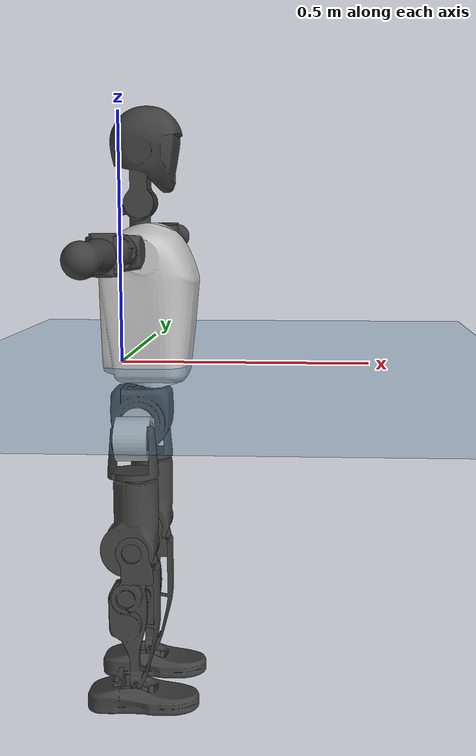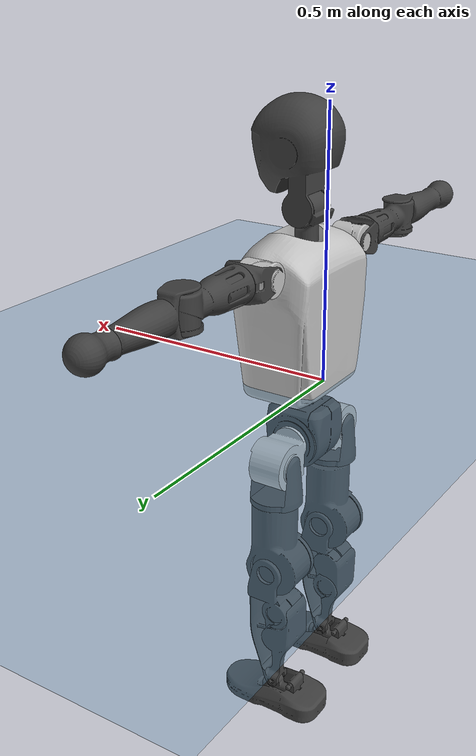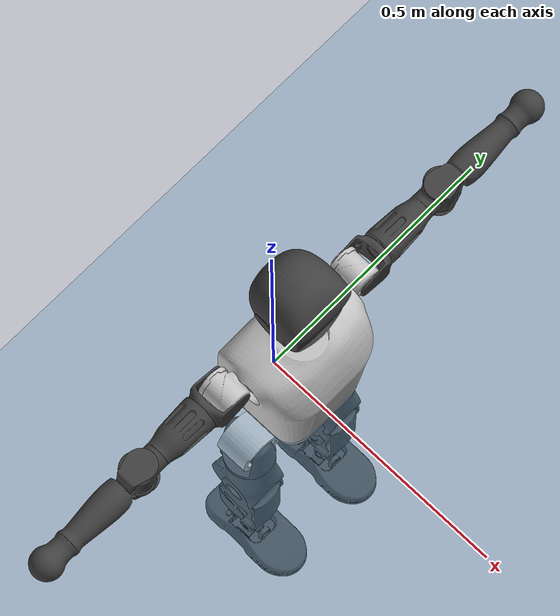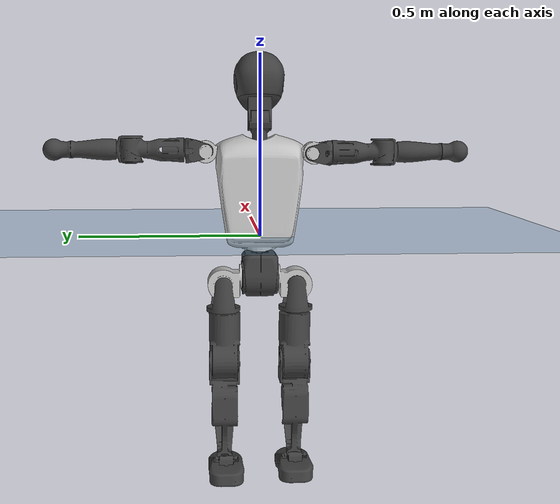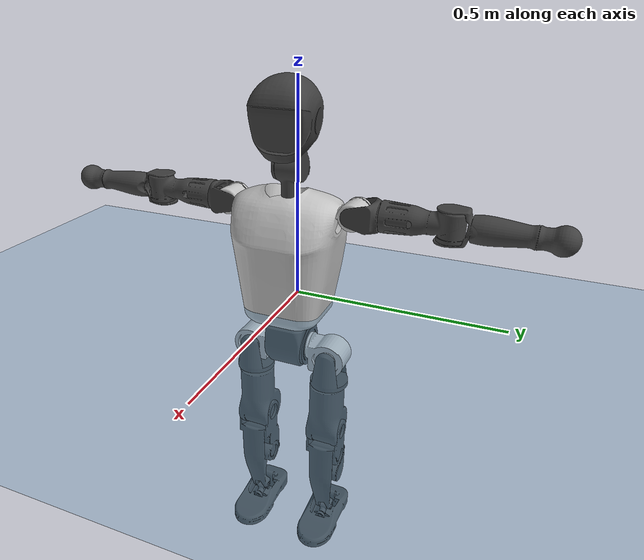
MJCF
<mujoco model="T1">
  <compiler angle="radian" assetdir="assets" balanceinertia="true" inertiafromgeom="false"/>

  <option timestep="0.005" density="1.2" viscosity="2e-05"/>

  <size nkey="1"/>

  <visual>
    <quality shadowsize="8192"/>
    <map shadowclip="0.5"/>
  </visual>

  <default>
    <default class="/">
      <joint armature="0.01" damping="0.01" frictionloss="0.1"/>
      <geom contype="0" conaffinity="0" group="1" solref="-1000 -80"/>
      <site size="0.01 0.005 0.005" group="5"/>
      <general forcelimited="true" biastype="affine" gainprm="25" biasprm="0 -25 -0.6"/>
      <default class="t1">
        <geom rgba="0.25 0.25 0.25 1"/>
        <default class="visual">
          <geom type="mesh" group="2"/>
        </default>
        <default class="collision">
          <geom group="3"/>
        </default>
        <default class="foot">
          <geom size="0.1115 0.05 0.015" type="box" condim="6" group="4" priority="1" solimp="0.015 1 0.015"/>
        </default>
        <default class="reward_collision_sphere">
          <geom group="5" rgba="1 0 0 1"/>
        </default>
      </default>
    </default>
  </default>

  <asset>
    <texture type="skybox" colorspace="auto" name="//unnamed_texture_0" builtin="gradient" rgb1="0.95 0.95 0.95" rgb2="0.95 0.95 0.95" width="100" height="600"/>
    <texture type="2d" colorspace="auto" name="texplane" builtin="checker" rgb1="0.345 0.575 0.748" rgb2="0.345 0.575 0.748" markrgb="1 1 1" width="512" height="512"/>
    <material name="MatPlane" class="/" texture="texplane" texuniform="true" texrepeat="2 2" specular="0.9"/>
    <mesh name="Trunk" class="/" file="Trunk.stl"/>
    <mesh name="H1" class="/" file="H1.stl"/>
    <mesh name="H2" class="/" file="H2.stl"/>
    <mesh name="AL1" class="/" file="AL1.stl"/>
    <mesh name="AL2" class="/" file="AL2.stl"/>
    <mesh name="AL3" class="/" file="AL3.stl"/>
    <mesh name="left_hand_link" class="/" file="left_hand_link.stl"/>
    <mesh name="AR1" class="/" file="AR1.stl"/>
    <mesh name="AR2" class="/" file="AR2.stl"/>
    <mesh name="AR3" class="/" file="AR3.stl"/>
    <mesh name="right_hand_link" class="/" file="right_hand_link.stl"/>
    <mesh name="Waist" class="/" file="Waist.stl"/>
    <mesh name="Hip_Pitch_Left" class="/" file="Hip_Pitch_Left.stl"/>
    <mesh name="Hip_Roll_Left" class="/" file="Hip_Roll_Left.stl"/>
    <mesh name="Hip_Yaw_Left" class="/" file="Hip_Yaw_Left.stl"/>
    <mesh name="Shank_Left" class="/" file="Shank_Left.stl"/>
    <mesh name="Ankle_Cross_Left" class="/" file="Ankle_Cross_Left.stl"/>
    <mesh name="left_foot_link" class="/" file="left_foot_link.stl"/>
    <mesh name="Hip_Pitch_Right" class="/" file="Hip_Pitch_Right.stl"/>
    <mesh name="Hip_Roll_Right" class="/" file="Hip_Roll_Right.stl"/>
    <mesh name="Hip_Yaw_Right" class="/" file="Hip_Yaw_Right.stl"/>
    <mesh name="Shank_Right" class="/" file="Shank_Right.stl"/>
    <mesh name="Ankle_Cross_Right" class="/" file="Ankle_Cross_Right.stl"/>
    <mesh name="right_foot_link" class="/" file="right_foot_link.stl"/>
  </asset>

  <worldbody>
    <geom name="floor" class="/" size="100 100 0.125" type="plane" group="0" material="MatPlane"/>
    <light name="toplight_shadow" class="/" pos="0 0 5" dir="0.0990148 0.0990148 -0.990148" type="directional" ambient="0.04 0.04 0.04" diffuse="0.55 0.55 0.55" specular="0.12 0.12 0.12"/>
    <light name="toplight_fill" class="/" pos="0 0 5" dir="0.0990148 0.0990148 -0.990148" type="directional" castshadow="false" ambient="0.04 0.04 0.04" diffuse="0.3 0.3 0.3" specular="0.08 0.08 0.08"/>
    <body name="trunk" childclass="t1" pos="0.00249569 0.000279513 0.000841446" quat="1 -0.000214004 -0.000360657 -0.000276262">
      <inertial pos="0.0333799 -0.000951005 0.106782" quat="0.999824 0.00203801 -0.0159315 0.00969485" mass="7.76595" diaginertia="0.00765891 0.0636512 0.067347"/>
      <joint name="//unnamed_joint_0" type="free" armature="0" damping="0" frictionloss="0"/>
      <geom name="//unnamed_geom_1" class="visual" rgba="0.76 0.76 0.76 1" mesh="Trunk"/>
      <geom name="//unnamed_geom_2" class="collision" size="0.0652935 0.087058 0.130587" pos="0.0363774 0 0.125036" type="box"/>
      <geom name="//unnamed_geom_3" class="reward_collision_sphere" size="0.100117" pos="0.0363774 0 0.104196"/>
      <geom name="//unnamed_geom_4" class="reward_collision_sphere" size="0.0130587" pos="0.0363774 0.0818962 0"/>
      <geom name="//unnamed_geom_5" class="reward_collision_sphere" size="0.0130587" pos="0.0363774 -0.0818962 0"/>
      <geom name="//unnamed_geom_6" class="reward_collision_sphere" size="0.0130587" pos="0.0363774 0.103093 0.187554"/>
      <geom name="//unnamed_geom_7" class="reward_collision_sphere" size="0.0130587" pos="0.0363774 -0.103093 0.187554"/>
      <site name="imu" pos="-0.00158933 -0.0137881 0.0108452" size="0.0087058"/>
      <camera name="track" pos="0 -1.92697 0" quat="0.707107 0.707107 0 0" mode="trackcom"/>
      <camera name="ego_camera" pos="0.0739674 0 0.437625" quat="-0.5 -0.5 0.5 0.5"/>
      <body name="H1" pos="0.0385159 -0.000215157 0.253753" quat="0.999999 0.000208804 0.000966203 0.000193283">
        <inertial pos="-0.00328649 -0.000154924 0.0569418" quat="0.764211 -0.0136999 0.00234748 0.644816" mass="0.302605" diaginertia="1.97572e-05 0.000188239 0.000187831"/>
        <joint name="AAHead_yaw" pos="0 0 0" axis="-0.00320663 -0.000491323 0.999995" stiffness="0.00253606" range="-1.55529 1.61592" armature="0.00907642" damping="0.0162382" frictionloss="0.0991186"/>
        <geom name="//unnamed_geom_8" class="visual" mesh="H1"/>
        <body name="H2" pos="0.00143449 0.00068305 0.064785" quat="1 0.000599138 0.000332026 -0.00052471">
          <inertial pos="0.00456002 0.00145347 0.103359" quat="0.988763 0.105733 -0.0683194 -0.0806305" mass="0.41401" diaginertia="0.000156966 0.00154228 0.00213418"/>
          <joint name="Head_pitch" pos="0 0 0" axis="-2.35244e-05 -1 7.20839e-05" range="-1.18304 0.346482" armature="0.00965712" damping="0.00991302" frictionloss="0.0890572"/>
          <geom name="//unnamed_geom_9" class="visual" mesh="H2"/>
          <geom name="//unnamed_geom_10" class="collision" size="0.0696464" pos="0.0060629 0 0.114616"/>
          <geom name="//unnamed_geom_11" class="reward_collision_sphere" size="0.0783522" pos="0.0121258 0 0.104196"/>
        </body>
      </body>
      <body name="AL1" pos="0.0389306 0.103107 0.231224" quat="1 -0.000115148 0.000508124 1.58414e-05">
        <inertial pos="-0.000143436 0.0436525 -0.00186608" quat="0.498184 0.493314 -0.509926 0.498427" mass="0.3746" diaginertia="0.000119766 0.0011493 0.000376434"/>
        <joint name="Left_Shoulder_Pitch" pos="0 0 0" axis="0.00695418 0.999923 -0.0102462" stiffness="0.00897991" range="-3.25088 1.23167" armature="0.00973548" damping="0.0158653" frictionloss="0.0766773"/>
        <geom name="//unnamed_geom_12" class="visual" rgba="0.76 0.76 0.76 1" mesh="AL1"/>
        <body name="AL2" pos="0.00225977 0.0468006 0.00279601" quat="0.999999 0.000970469 -0.00110592 0.000245483">
          <inertial pos="0.00151419 0.0346192 0.00274343" quat="0.487478 0.511883 -0.488196 0.511865" mass="0.103747" diaginertia="3.38313e-05 0.000287093 0.000211157"/>
          <joint name="Left_Shoulder_Roll" pos="0 0 0" axis="-0.999947 -0.00300313 -0.00980642" range="-1.52298 1.71664" armature="0.00884011" damping="0.0044043" frictionloss="0.087343"/>
          <geom name="//unnamed_geom_13" class="visual" mesh="AL2"/>
          <body name="AL3" pos="0.000548859 0.0594299 0.00249611" quat="0.999999 -0.00142063 -8.38447e-05 0.000119041">
            <inertial pos="-0.000766079 0.0838005 0.00172036" quat="0.70018 0.713966 3.32119e-05 0.000969793" mass="0.683961" diaginertia="0.00110217 0.0109487 0.000780526"/>
            <joint name="Left_Elbow_Pitch" pos="0 0 0" axis="0.000118074 -1 -0.000700795" range="-2.26413 2.29792" armature="0.00815906" damping="0" frictionloss="0.0911421"/>
            <geom name="//unnamed_geom_14" class="visual" mesh="AL3"/>
            <geom name="//unnamed_geom_15" class="collision" size="0.0261174 0.0652935" pos="0 0.0481743 0" quat="0.707105 0.707108 0 0" type="cylinder"/>
            <geom name="//unnamed_geom_16" class="reward_collision_sphere" size="0.0313409"/>
            <body name="left_hand_link" pos="0.00356679 0.141811 0.00148316" quat="1 0.000339531 0.000218535 0.000914354">
              <inertial pos="-0.000923064 0.104225 -4.13857e-05" quat="0.716436 0.697642 0.00353375 0.0016686" mass="0.209432" diaginertia="0.000677103 0.00675435 0.000261842"/>
              <joint name="Left_Elbow_Yaw" pos="0 0 0" axis="-0.00914894 0.00293246 0.999954" stiffness="0.0106553" range="-2.38553 -0.0534689" armature="0.00964564" damping="0.0219202" frictionloss="0.0950035"/>
              <geom name="//unnamed_geom_17" class="visual" mesh="left_hand_link"/>
              <geom name="//unnamed_geom_18" class="collision" size="0.0261174 0.0761758" pos="0 0.125253 0" quat="0.707105 0.707108 0 0" type="cylinder"/>
              <geom name="//unnamed_geom_19" class="reward_collision_sphere" size="0.043529"/>
              <geom name="//unnamed_geom_20" class="reward_collision_sphere" size="0.0304703" pos="0 0.105983 0"/>
              <geom name="//unnamed_geom_21" class="reward_collision_sphere" size="0.0304703" pos="0 0.207149 0"/>
            </body>
          </body>
        </body>
      </body>
      <body name="AR1" pos="0.031668 -0.102859 0.227549" quat="0.999999 -0.00053208 -0.000835154 0.000142944">
        <inertial pos="0.00197913 -0.0413667 -2.61423e-05" quat="0.503873 0.495187 -0.505533 0.495317" mass="0.349871" diaginertia="0.000107911 0.00106805 0.000362007"/>
        <joint name="Right_Shoulder_Pitch" pos="0 0 0" axis="-0.000104167 -1 7.72542e-05" stiffness="0.00926711" range="-1.24569 3.35471" armature="0.00963422" damping="0.00926723" frictionloss="0.0751641"/>
        <geom name="//unnamed_geom_22" class="visual" rgba="0.76 0.76 0.76 1" mesh="AR1"/>
        <body name="AR2" pos="-0.00269941 -0.0414529 -0.000891338" quat="1 1.6997e-06 2.21025e-06 4.23673e-06">
          <inertial pos="-0.000579699 -0.034661 -5.48984e-05" quat="0.511777 0.488411 -0.513033 0.486145" mass="0.107801" diaginertia="3.39065e-05 0.00029556 0.000231216"/>
          <joint name="Right_Shoulder_Roll" pos="0 0 0" axis="-0.999755 0.0120438 -0.018572" stiffness="0.00190631" range="-1.74698 1.56317" armature="0.00978828" damping="0.00862489" frictionloss="0.0912919"/>
          <geom name="//unnamed_geom_23" class="visual" mesh="AR2"/>
          <body name="AR3" pos="-0.00144206 -0.0560014 0.00184841" quat="1 -0.000357231 -4.46884e-05 -5.64549e-05">
            <inertial pos="-0.000693583 -0.0798507 0.00053668" quat="0.709352 0.70472 0.0102279 -0.00921526" mass="0.674313" diaginertia="0.00104452 0.0105948 0.00076697"/>
            <joint name="Right_Elbow_Pitch" pos="0 0 0" axis="0.00544657 0.999907 0.0125025" range="-2.2796 2.21651" armature="0.00872299" damping="0" frictionloss="0.0851399"/>
            <geom name="//unnamed_geom_24" class="visual" mesh="AR3"/>
            <geom name="//unnamed_geom_25" class="collision" size="0.0261174 0.0652935" pos="0 -0.0481743 0" quat="0.707105 0.707108 0 0" type="cylinder"/>
            <geom name="//unnamed_geom_26" class="reward_collision_sphere" size="0.0313409"/>
            <body name="right_hand_link" pos="0.00184673 -0.138919 0.000204553" quat="1 -0.000389311 3.5207e-05 0.000158733">
              <inertial pos="-0.00210515 -0.10641 0.00191618" quat="0.706612 0.707601 -0.000383373 0.000108624" mass="0.216961" diaginertia="0.000677801 0.00664091 0.000253726"/>
              <joint name="Right_Elbow_Yaw" pos="0 0 0" axis="0.00396788 0.00574303 0.999976" stiffness="0.00842469" range="0.0557475 2.38762" armature="0.00867237" damping="0" frictionloss="0.0835011"/>
              <geom name="//unnamed_geom_27" class="visual" mesh="right_hand_link"/>
              <geom name="//unnamed_geom_28" class="collision" size="0.0261174 0.0761758" pos="0 -0.125253 0" quat="0.707105 0.707108 0 0" type="cylinder"/>
              <geom name="//unnamed_geom_29" class="reward_collision_sphere" size="0.043529"/>
              <geom name="//unnamed_geom_30" class="reward_collision_sphere" size="0.0304703" pos="0 -0.105983 0"/>
              <geom name="//unnamed_geom_31" class="reward_collision_sphere" size="0.0304703" pos="0 -0.207149 0"/>
            </body>
          </body>
        </body>
      </body>
      <body name="Waist" pos="0.036846 -0.000157152 -0.117911" quat="1 0.000450411 0.000155652 -0.000107627">
        <inertial pos="0.000450768 -0.000420595 0.0084003" quat="0.985822 -0.00330148 -0.167752 -0.00167167" mass="1.65111" diaginertia="0.00043532 0.00447048 0.0057601"/>
        <joint name="Waist" pos="0 0 0" axis="0.0101233 -0.0048613 0.999937" range="-1.62209 1.5144" armature="0.00859956" damping="0.024255" frictionloss="0.0833325"/>
        <geom name="//unnamed_geom_32" class="visual" mesh="Waist"/>
        <body name="Hip_Pitch_Left" pos="-0.00106037 0.103406 -0.00245844" quat="1 0.000312537 0.000458847 0.000258439">
          <inertial pos="0.000751678 -0.00898105 -0.0167383" quat="0.975549 0.219626 0.00210227 0.00806048" mass="0.683853" diaginertia="0.000144308 0.00125072 0.00156544"/>
          <joint name="Left_Hip_Pitch" pos="0 0 0" axis="0.00946307 0.999853 0.0142911" stiffness="0.0133397" range="-1.84703 1.57371" armature="0.0096176" damping="0.0156839" frictionloss="0.0882487"/>
          <geom name="//unnamed_geom_33" class="visual" rgba="0.76 0.76 0.76 1" mesh="Hip_Pitch_Left"/>
          <body name="Hip_Roll_Left" pos="0.000877553 -0.000163055 -0.0212865" quat="1 0.000252722 -8.05427e-05 -0.00049465">
            <inertial pos="0.00373583 -0.00139085 -0.0565334" quat="0.703549 -0.00643087 -0.00539782 0.710598" mass="0.248717" diaginertia="0.000143799 0.00126883 0.00063879"/>
            <joint name="Left_Hip_Roll" pos="0 0 0" axis="-0.99998 0.00563158 -0.00294843" stiffness="0.0112745" range="-1.56131 0.209028" armature="0.00746175" damping="0" frictionloss="0.0752998"/>
            <geom name="//unnamed_geom_34" class="visual" mesh="Hip_Roll_Left"/>
            <geom name="//unnamed_geom_35" class="reward_collision_sphere" size="0.0478819"/>
            <body name="Hip_Yaw_Left" pos="0.00337913 -0.0035592 -0.0830427" quat="1 -7.77219e-05 -0.000452235 -7.47928e-05">
              <inertial pos="-0.00433432 -0.00313646 -0.0955299" quat="0.693946 -0.033285 -0.0398471 0.718152" mass="1.4329" diaginertia="0.00209676 0.0205368 0.00312243"/>
              <joint name="Left_Hip_Yaw" pos="0 0 0" axis="-0.00464513 -0.0113696 -0.999925" stiffness="0.00408194" range="-1.00639 1.03086" armature="0.0088883" damping="0.0118944" frictionloss="0.0941117"/>
              <geom name="//unnamed_geom_36" class="visual" mesh="Hip_Yaw_Left"/>
              <geom name="//unnamed_geom_37" class="collision" size="0.043529 0.0696464" type="cylinder"/>
              <body name="Shank_Left" pos="-0.00635108 0.000860227 -0.142851" quat="1 0.000145081 0.000292805 5.96291e-05">
                <inertial pos="-0.00352011 0.00222743 -0.127207" quat="0.997545 0.000409215 -0.0244724 0.065607" mass="1.08978" diaginertia="0.00280604 0.0280321 0.00232262"/>
                <joint name="Left_Knee_Pitch" pos="0 0 0" axis="0.00328347 0.999973 0.00651793" range="-0.0169076 2.38202" armature="0.0077577" damping="0.0188121" frictionloss="0.0881921"/>
                <geom name="//unnamed_geom_38" class="visual" mesh="Shank_Left"/>
                <geom name="//unnamed_geom_39" class="collision" size="0.043529 0.0652935" pos="0 0 -0.125036" type="cylinder"/>
                <geom name="//unnamed_geom_40" class="reward_collision_sphere" size="0.0565877"/>
                <body name="Ankle_Cross_Left" pos="-0.00169847 -0.00239331 -0.289256" quat="1 3.06561e-05 -9.43451e-05 8.02155e-05">
                  <inertial pos="-0.00219063 0.00122174 -0.00815656" quat="0.443314 0.550974 0.550502 0.443675" mass="0.0499465" diaginertia="2.5446e-06 2.21771e-05 1.46436e-05"/>
                  <joint name="Left_Ankle_Pitch" pos="0 0 0" axis="-0.00767025 0.99996 0.0046762" range="-0.880073 0.301371" armature="0.00864558" damping="0" frictionloss="0.0748662"/>
                  <geom name="//unnamed_geom_41" class="visual" mesh="Ankle_Cross_Left"/>
                  <body name="left_foot_link" pos="-5.92628e-05 -0.000848268 -0.0156769" quat="1 -0.000114835 -6.88101e-05 0.000283152">
                    <inertial pos="-0.000280965 0.00234188 -0.00958072" quat="-0.000295871 0.619792 -0.00159554 0.784765" mass="0.444698" diaginertia="0.000223319 0.00201941 0.00263405"/>
                    <joint name="Left_Ankle_Roll" pos="0 0 0" axis="-0.999996 -0.0019575 -0.00214173" stiffness="0.00168019" range="-0.38416 0.385545" armature="0.00892218" damping="0.0154467" frictionloss="0.0848855"/>
                    <geom name="//unnamed_geom_42" class="visual" mesh="left_foot_link"/>
                    <geom name="left_foot" class="foot" size="0.0957285 0.0456744 0.0118444" pos="0.0060629 0 -0.0156295"/>
                    <geom name="//unnamed_geom_44" class="reward_collision_sphere" size="0.0452702" pos="0.0060629 0 -0.0156295"/>
                    <geom name="//unnamed_geom_45" class="reward_collision_sphere" size="0.0261174" pos="0.0575976 -0.0221602 -0.0156295"/>
                    <geom name="//unnamed_geom_46" class="reward_collision_sphere" size="0.0261174" pos="-0.0424403 -0.0221602 -0.0156295"/>
                    <site name="left_foot" class="foot" pos="0.0060629 0 -0.0156295" size="0.0087058"/>
                  </body>
                </body>
              </body>
            </body>
          </body>
        </body>
        <body name="Hip_Pitch_Right" pos="-0.00251843 -0.102568 -0.0025302" quat="1 -0.000265986 -0.00062946 -0.000593466">
          <inertial pos="-3.26723e-05 0.00766706 -0.0201763" quat="0.971733 -0.235776 0.00823936 -0.00878244" mass="0.675302" diaginertia="0.000148036 0.00122679 0.0015911"/>
          <joint name="Right_Hip_Pitch" pos="0 0 0" axis="-0.00328587 -0.999913 -0.0127676" range="-1.55017 1.80222" armature="0.00832743" damping="0.0161784" frictionloss="0.0849741"/>
          <geom name="//unnamed_geom_47" class="visual" rgba="0.76 0.76 0.76 1" mesh="Hip_Pitch_Right"/>
          <body name="Hip_Roll_Right" pos="-1.63442e-05 -4.6864e-05 -0.0185452" quat="1 7.1916e-05 -0.000198305 -0.00054674">
            <inertial pos="-0.000936589 -0.00241231 -0.0542141" quat="0.70274 -0.0148298 -0.00296551 0.711286" mass="0.248198" diaginertia="0.000138912 0.00119008 0.00062403"/>
            <joint name="Right_Hip_Roll" pos="0 0 0" axis="-0.999999 -0.000845871 0.000996052" range="-0.197962 1.53562" armature="0.00744996" damping="0.0131177" frictionloss="0.0923673"/>
            <geom name="//unnamed_geom_48" class="visual" mesh="Hip_Roll_Right"/>
            <geom name="//unnamed_geom_49" class="reward_collision_sphere" size="0.0478819"/>
            <body name="Hip_Yaw_Right" pos="0.00198476 0.00276574 -0.087019" quat="1 1.44035e-05 0.000223858 -5.75248e-05">
              <inertial pos="-0.00130407 0.000290192 -0.0957925" quat="0.712436 -0.0329696 -0.0326586 0.700201" mass="1.43094" diaginertia="0.00210852 0.0203438 0.00306419"/>
              <joint name="Right_Hip_Yaw" pos="0 0 0" axis="0.000117612 -9.48714e-05 -1" range="-1.04829 1.04559" armature="0.00833595" damping="0" frictionloss="0.0872126"/>
              <geom name="//unnamed_geom_50" class="visual" mesh="Hip_Yaw_Right"/>
              <geom name="//unnamed_geom_51" class="collision" size="0.043529 0.0696464" type="cylinder"/>
              <body name="Shank_Right" pos="-0.00474533 -5.39411e-05 -0.137762" quat="1 -5.01523e-05 -1.95543e-06 4.27503e-05">
                <inertial pos="-0.00327775 -0.00151729 -0.13074" quat="0.999452 -0.0036965 -0.0154617 -0.0290196" mass="1.21631" diaginertia="0.00285354 0.0284931 0.00235174"/>
                <joint name="Right_Knee_Pitch" pos="0 0 0" axis="-0.00997692 -0.999849 0.014249" range="-2.39752 -0.0125391" armature="0.00875681" damping="0.0229022" frictionloss="0.0749088"/>
                <geom name="//unnamed_geom_52" class="visual" mesh="Shank_Right"/>
                <geom name="//unnamed_geom_53" class="collision" size="0.043529 0.0652935" pos="0 0 -0.125036" type="cylinder"/>
                <geom name="//unnamed_geom_54" class="reward_collision_sphere" size="0.0565877"/>
                <body name="Ankle_Cross_Right" pos="0.000993486 0.000544026 -0.291731" quat="1 1.72882e-05 0.000169153 1.94688e-05">
                  <inertial pos="-0.00422185 -0.00158101 -0.00626266" quat="0.443017 0.550939 0.55183 0.442365" mass="0.0475907" diaginertia="2.35841e-06 2.11141e-05 1.39203e-05"/>
                  <joint name="Right_Ankle_Pitch" pos="0 0 0" axis="0.00906013 -0.999952 -0.00366771" stiffness="0.00636366" range="-0.291732 0.867601" armature="0.00977959" damping="0.00907984" frictionloss="0.0914609"/>
                  <geom name="//unnamed_geom_55" class="visual" mesh="Ankle_Cross_Right"/>
                  <body name="right_foot_link" pos="0.00289622 -0.000169369 -0.0115071" quat="1 -6.68808e-06 -5.59117e-06 3.79844e-06">
                    <inertial pos="-0.00158741 0.00214966 -0.00848771" quat="-0.0133249 0.62065 -0.000632881 0.783974" mass="0.442563" diaginertia="0.000223831 0.00203315 0.00270984"/>
                    <joint name="Right_Ankle_Roll" pos="0 0 0" axis="-0.999989 -0.000633469 -0.00457863" range="-0.417227 0.388345" armature="0.00832984" damping="0.00679064" frictionloss="0.0763144"/>
                    <geom name="//unnamed_geom_56" class="visual" mesh="right_foot_link"/>
                    <geom name="right_foot" class="foot" size="0.114079 0.0474346 0.0145138" pos="0.0060629 0 -0.0156295"/>
                    <geom name="//unnamed_geom_58" class="reward_collision_sphere" size="0.0348232"/>
                    <geom name="//unnamed_geom_59" class="reward_collision_sphere" size="0.0261174" pos="0.0060629 0 -0.0156295"/>
                    <geom name="//unnamed_geom_60" class="reward_collision_sphere" size="0.0261174" pos="0.0575976 0.0221602 -0.0156295"/>
                    <geom name="//unnamed_geom_61" class="reward_collision_sphere" size="0.0261174" pos="-0.0424403 0.0221602 -0.0156295"/>
                    <site name="right_foot" class="foot" pos="0.0060629 0 -0.0156295" size="0.0087058"/>
                  </body>
                </body>
              </body>
            </body>
          </body>
        </body>
      </body>
    </body>
  </worldbody>

  <contact>
    <pair class="/" geom1="floor" geom2="left_foot" name="//unnamed_contact_0"/>
    <pair class="/" geom1="floor" geom2="right_foot" name="//unnamed_contact_1"/>
  </contact>

  <actuator>
    <general name="AAHead_yaw" class="/" joint="AAHead_yaw" forcerange="-6.63028 6.63028" gainprm="23.8177" biasprm="0 -23.8177 -0.493372"/>
    <general name="Head_pitch" class="/" joint="Head_pitch" forcerange="-6.36849 6.36849" gainprm="23.8177" biasprm="0 -23.8177 -0.493372"/>
    <general name="Left_Shoulder_Pitch" class="/" joint="Left_Shoulder_Pitch" forcerange="-15.2678 15.2678" gainprm="23.8177" biasprm="0 -23.8177 -0.493372"/>
    <general name="Left_Shoulder_Roll" class="/" joint="Left_Shoulder_Roll" forcerange="-16.1474 16.1474" gainprm="23.8177" biasprm="0 -23.8177 -0.493372"/>
    <general name="Left_Elbow_Pitch" class="/" joint="Left_Elbow_Pitch" forcerange="-16.9366 16.9366" gainprm="23.8177" biasprm="0 -23.8177 -0.493372"/>
    <general name="Left_Elbow_Yaw" class="/" joint="Left_Elbow_Yaw" forcerange="-17.3676 17.3676" gainprm="23.8177" biasprm="0 -23.8177 -0.493372"/>
    <general name="Right_Shoulder_Pitch" class="/" joint="Right_Shoulder_Pitch" forcerange="-14.1018 14.1018" gainprm="23.8177" biasprm="0 -23.8177 -0.493372"/>
    <general name="Right_Shoulder_Roll" class="/" joint="Right_Shoulder_Roll" forcerange="-14.6792 14.6792" gainprm="23.8177" biasprm="0 -23.8177 -0.493372"/>
    <general name="Right_Elbow_Pitch" class="/" joint="Right_Elbow_Pitch" forcerange="-16.0256 16.0256" gainprm="23.8177" biasprm="0 -23.8177 -0.493372"/>
    <general name="Right_Elbow_Yaw" class="/" joint="Right_Elbow_Yaw" forcerange="-16.6298 16.6298" gainprm="23.8177" biasprm="0 -23.8177 -0.493372"/>
    <general name="Waist" class="/" joint="Waist" forcerange="-25.3895 25.3895" gainprm="23.8177" biasprm="0 -23.8177 -0.493372"/>
    <general name="Left_Hip_Pitch" class="/" joint="Left_Hip_Pitch" forcerange="-38.4759 38.4759" gainprm="23.8177" biasprm="0 -23.8177 -0.493372"/>
    <general name="Left_Hip_Roll" class="/" joint="Left_Hip_Roll" forcerange="-27.1048 27.1048" gainprm="23.8177" biasprm="0 -23.8177 -0.493372"/>
    <general name="Left_Hip_Yaw" class="/" joint="Left_Hip_Yaw" forcerange="-24.1101 24.1101" gainprm="23.8177" biasprm="0 -23.8177 -0.493372"/>
    <general name="Left_Knee_Pitch" class="/" joint="Left_Knee_Pitch" forcerange="-57.4578 57.4578" gainprm="23.8177" biasprm="0 -23.8177 -0.493372"/>
    <general name="Left_Ankle_Pitch" class="/" joint="Left_Ankle_Pitch" forcerange="-15.5919 15.5919" gainprm="23.8177" biasprm="0 -23.8177 -0.493372"/>
    <general name="Left_Ankle_Roll" class="/" joint="Left_Ankle_Roll" forcerange="-13.5623 13.5623" gainprm="23.8177" biasprm="0 -23.8177 -0.493372"/>
    <general name="Right_Hip_Pitch" class="/" joint="Right_Hip_Pitch" forcerange="-40.2366 40.2366" gainprm="23.8177" biasprm="0 -23.8177 -0.493372"/>
    <general name="Right_Hip_Roll" class="/" joint="Right_Hip_Roll" forcerange="-25.3698 25.3698" gainprm="23.8177" biasprm="0 -23.8177 -0.493372"/>
    <general name="Right_Hip_Yaw" class="/" joint="Right_Hip_Yaw" forcerange="-23.7749 23.7749" gainprm="23.8177" biasprm="0 -23.8177 -0.493372"/>
    <general name="Right_Knee_Pitch" class="/" joint="Right_Knee_Pitch" forcerange="-48.5108 48.5108" gainprm="23.8177" biasprm="0 -23.8177 -0.493372"/>
    <general name="Right_Ankle_Pitch" class="/" joint="Right_Ankle_Pitch" forcerange="-16.6933 16.6933" gainprm="23.8177" biasprm="0 -23.8177 -0.493372"/>
    <general name="Right_Ankle_Roll" class="/" joint="Right_Ankle_Roll" forcerange="-14.2471 14.2471" gainprm="23.8177" biasprm="0 -23.8177 -0.493372"/>
  </actuator>

  <sensor>
    <gyro site="imu" name="imu_angular_velocity"/>
    <velocimeter site="imu" name="imu_linear_velocity"/>
    <framelinvel objtype="site" objname="left_foot" name="left_foot_global_linear_velocity"/>
    <framelinvel objtype="site" objname="right_foot" name="right_foot_global_linear_velocity"/>
  </sensor>

  <keyframe>
    <key name="home" qpos="0 0 0.6385 1 0 0 0 0 0 0 1.4 0 -0.4 0 -1.4 0 0.4 0 -0.4 0 0 0.8 -0.4 0 0.4 0 0 -0.8 0.4 0"/>
  </keyframe>
</mujoco>
